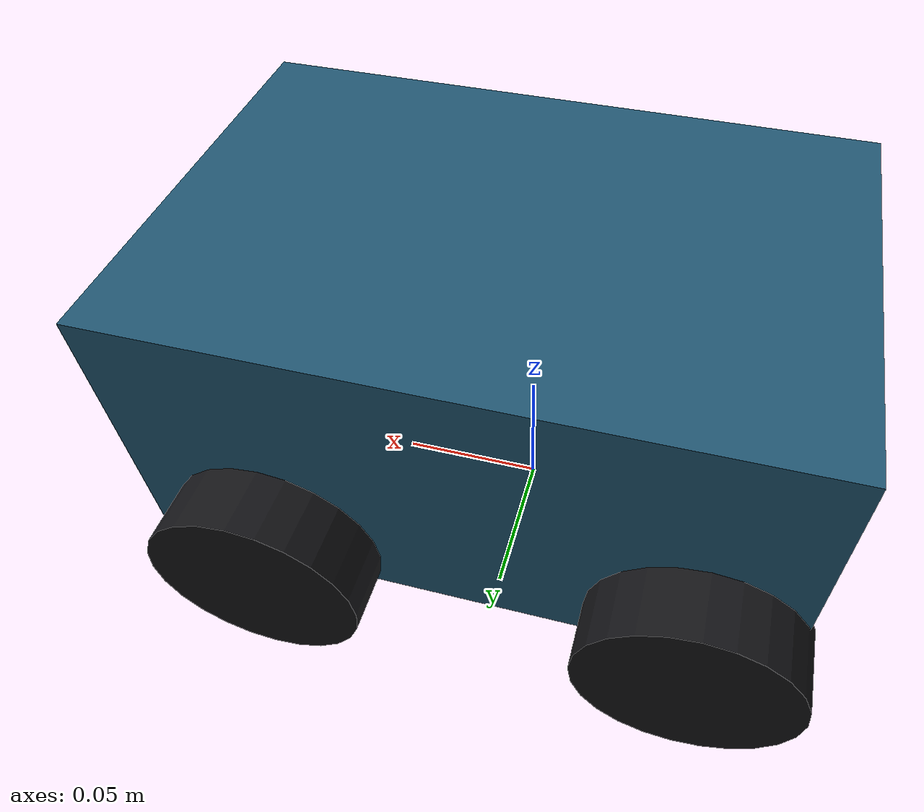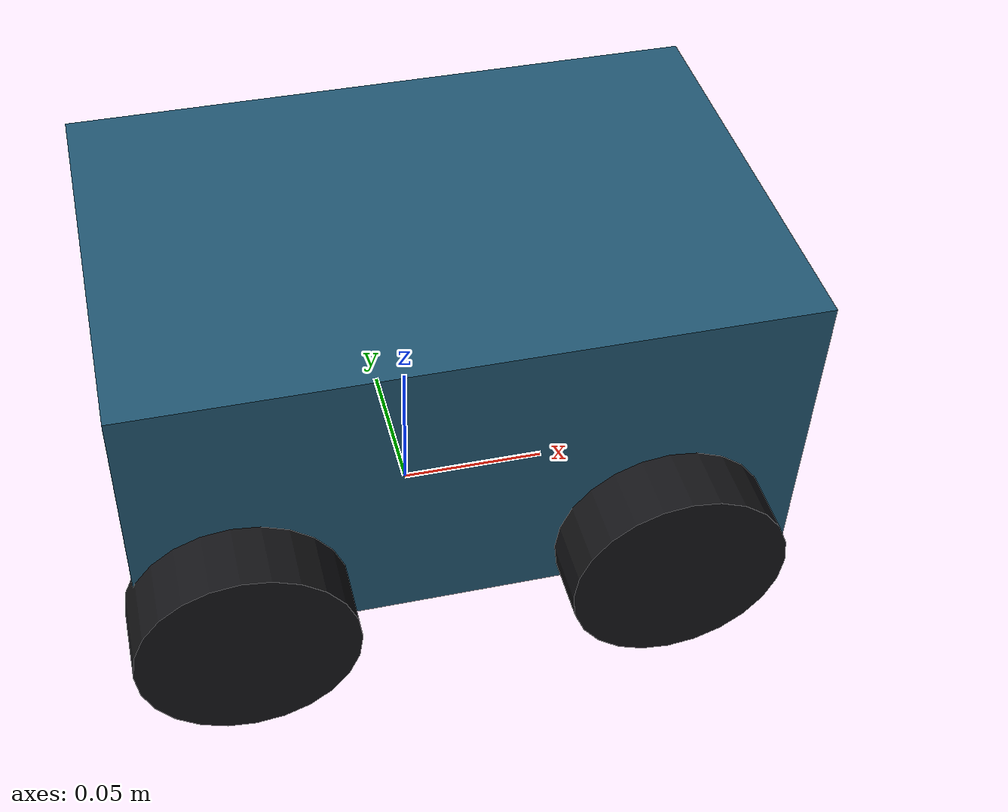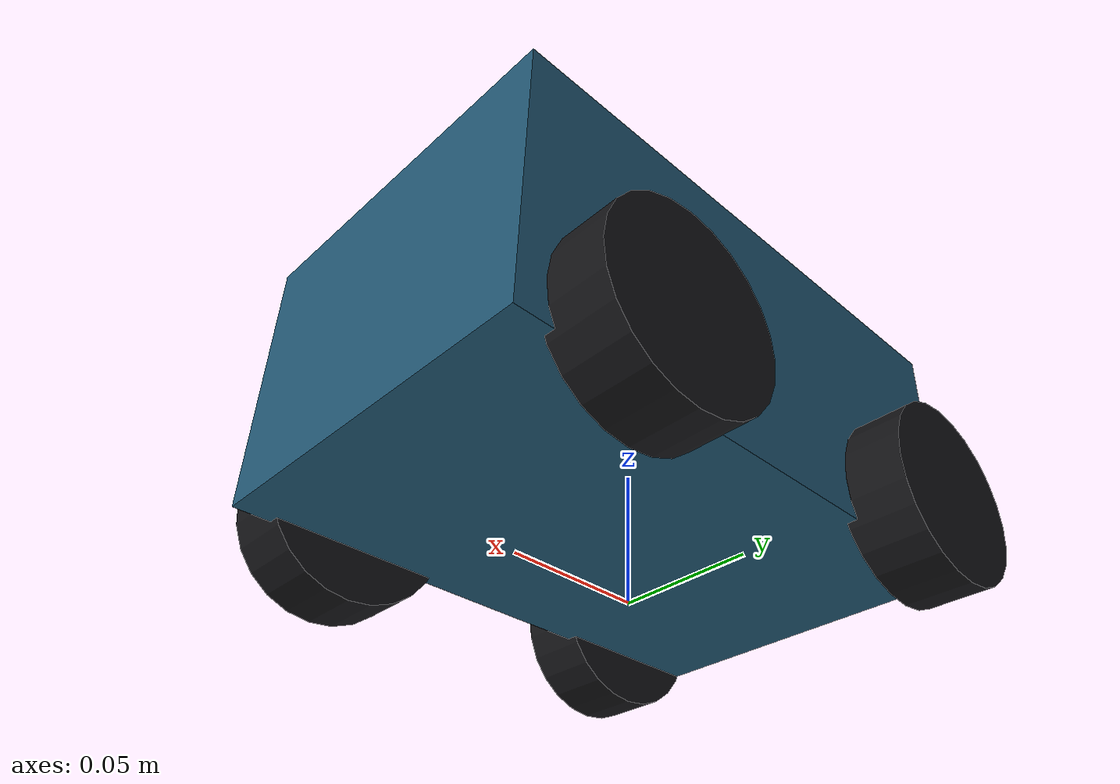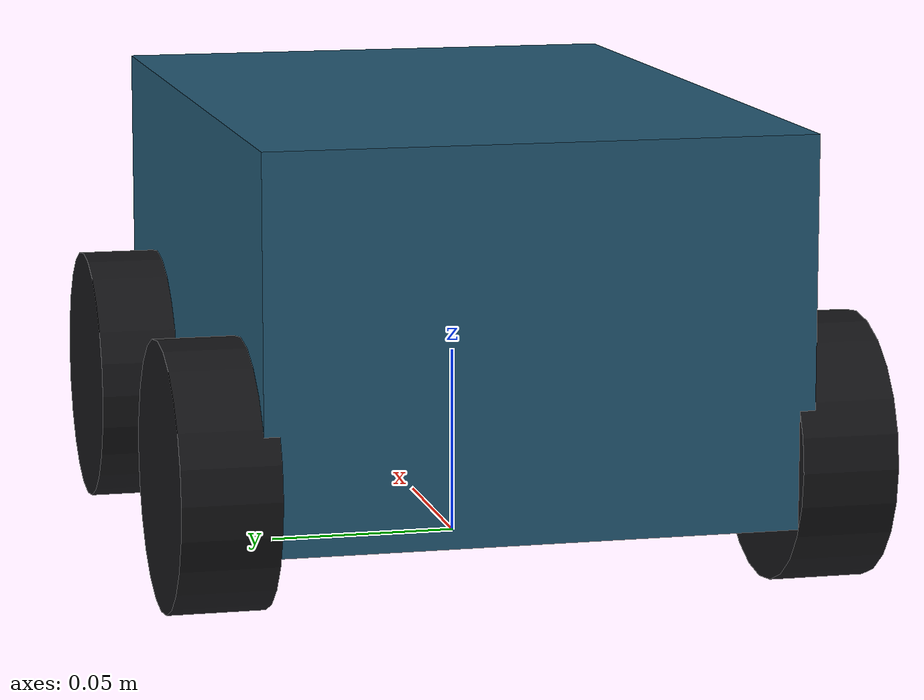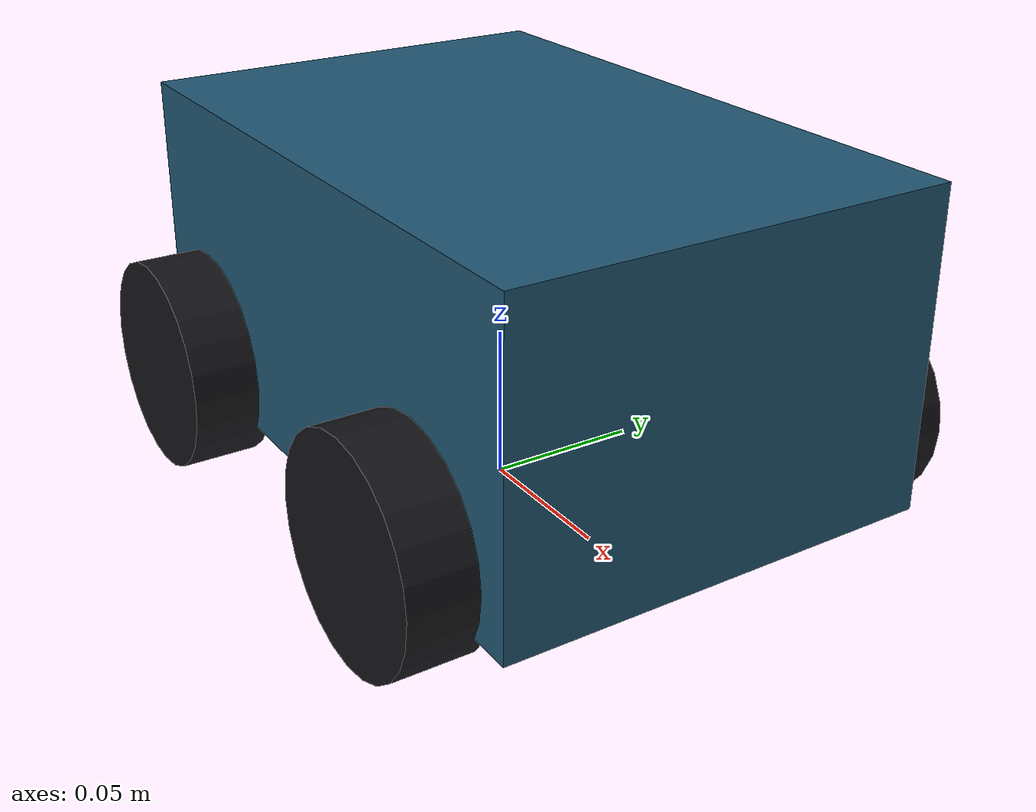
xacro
<?xml version="1.0"?>
<robot xmlns:xacro="http://www.ros.org/wiki/xacro" xmlns:gz="http://gazebosim.org/schema" name="ugv">
  <xacro:arg name="use_cad" default="false"/>
  <xacro:arg name="mesh_dir" default=""/>
  <!-- CAD tire envelope; replace with measured physical mecanum dimensions. -->
  <xacro:property name="radius" value="0.03446133"/>
  <xacro:property name="track" value="0.156907572"/>
  <xacro:property name="wheelbase" value="0.134780014"/>
  <xacro:property name="wheel_width" value="0.025"/>
  <xacro:property name="wheel_mass" value="0.045"/>
  <material name="body"><color rgba="0.13 0.34 0.45 1"/></material>
  <material name="tire"><color rgba="0.08 0.08 0.09 1"/></material>
  <material name="sensor"><color rgba="0.15 0.15 0.18 1"/></material>

  <link name="base_footprint"/>
  <joint name="base_joint" type="fixed">
    <parent link="base_footprint"/><child link="base_link"/>
    <origin xyz="0 0 ${radius}"/>
  </joint>
  <link name="base_link">
    <!-- Estimated mass and box inertia, not inferred from mixed-material CAD. -->
    <inertial>
      <origin xyz="0 0 0.035"/><mass value="0.8"/>
      <inertia ixx="0.00167" ixy="0" ixz="0" iyy="0.00321" iyz="0" izz="0.00417"/>
    </inertial>
    <visual>
      <xacro:if value="$(arg use_cad)">
        <geometry><mesh filename="file://$(arg mesh_dir)/chassis.stl"/></geometry>
      </xacro:if>
      <xacro:unless value="$(arg use_cad)">
        <origin xyz="0.007 0 0.035"/><geometry><box size="0.21 0.14 0.10"/></geometry>
      </xacro:unless>
      <material name="body"/>
    </visual>
    <collision>
      <origin xyz="0.007 0 0.035"/><geometry><box size="0.21 0.14 0.10"/></geometry>
    </collision>
  </link>

  <xacro:macro name="wheel" params="name x y friction_y">
    <link name="${name}_wheel">
      <inertial>
        <mass value="${wheel_mass}"/>
        <inertia ixx="${wheel_mass*(3*radius*radius+wheel_width*wheel_width)/12}"
                 iyy="${wheel_mass*radius*radius/2}"
                 izz="${wheel_mass*(3*radius*radius+wheel_width*wheel_width)/12}"
                 ixy="0" ixz="0" iyz="0"/>
      </inertial>
      <visual>
        <xacro:if value="$(arg use_cad)">
          <geometry><mesh filename="file://$(arg mesh_dir)/${name}_wheel.stl"/></geometry>
        </xacro:if>
        <xacro:unless value="$(arg use_cad)">
          <origin rpy="${pi/2} 0 0"/>
          <geometry><cylinder radius="${radius}" length="${wheel_width}"/></geometry>
        </xacro:unless>
        <material name="tire"/>
      </visual>
      <!-- Simplified mecanum contact; diagonal friction is defined below. -->
      <collision><geometry><sphere radius="${radius}"/></geometry></collision>
    </link>
    <joint name="${name}_wheel_joint" type="continuous">
      <parent link="base_link"/><child link="${name}_wheel"/>
      <origin xyz="${x} ${y} 0"/><axis xyz="0 1 0"/>
      <limit effort="0.4" velocity="30"/><dynamics damping="0.001"/>
    </joint>
    <gazebo reference="${name}_wheel">
      <collision>
        <surface>
          <friction>
            <ode>
              <mu>1.0</mu>
              <mu2>0.0</mu2>
              <fdir1 gz:expressed_in="base_footprint">1 ${friction_y} 0</fdir1>
            </ode>
          </friction>
        </surface>
      </collision>
    </gazebo>
  </xacro:macro>
  <xacro:wheel name="front_left"
               x="${wheelbase/2}" y="${track/2}"
               friction_y="-1"/>
  <xacro:wheel name="front_right"
               x="${wheelbase/2}" y="${-track/2}"
               friction_y="1"/>
  <xacro:wheel name="rear_left"
               x="${-wheelbase/2}" y="${track/2}"
               friction_y="1"/>
  <xacro:wheel name="rear_right"
               x="${-wheelbase/2}" y="${-track/2}"
               friction_y="-1"/>
  <gazebo>
    <plugin filename="gz-sim-mecanum-drive-system" name="gz::sim::systems::MecanumDrive">
      <front_left_joint>front_left_wheel_joint</front_left_joint>
      <front_right_joint>front_right_wheel_joint</front_right_joint>
      <back_left_joint>rear_left_wheel_joint</back_left_joint>
      <back_right_joint>rear_right_wheel_joint</back_right_joint>
      <wheel_separation>${track}</wheel_separation><wheelbase>${wheelbase}</wheelbase>
      <wheel_radius>${radius}</wheel_radius>
      <topic>/model/ugv/cmd_vel</topic><odom_topic>/model/ugv/odometry</odom_topic>
      <tf_topic>/model/ugv/tf</tf_topic><frame_id>odom</frame_id><child_frame_id>base_footprint</child_frame_id>
      <odom_publish_frequency>50</odom_publish_frequency>
      <max_linear_velocity>0.35</max_linear_velocity><min_linear_velocity>-0.35</min_linear_velocity>
      <max_angular_velocity>1.2</max_angular_velocity><min_angular_velocity>-1.2</min_angular_velocity>
      <max_linear_acceleration>0.5</max_linear_acceleration><min_linear_acceleration>-0.5</min_linear_acceleration>
      <max_angular_acceleration>1.5</max_angular_acceleration><min_angular_acceleration>-1.5</min_angular_acceleration>
    </plugin>
    <plugin filename="gz-sim-joint-state-publisher-system" name="gz::sim::systems::JointStatePublisher"/>
  </gazebo>

  <link name="camera_link" />

  <joint name="camera_joint" type="fixed">
    <parent link="base_link"/>
    <child link="camera_link"/>
    <origin xyz="0.115 0 0.08" rpy="0 0 0"/>
  </joint>

  <link name="camera_optical_frame"/>

  <joint name="camera_optical_joint" type="fixed">
    <parent link="camera_link"/>
    <child link="camera_optical_frame"/>
    <origin xyz="0 0 0" rpy="${-pi/2} 0 ${-pi/2}"/>
  </joint>

  <gazebo reference="camera_link">
    <sensor name="front_camera" type="camera">
      <always_on>true</always_on>
      <update_rate>15</update_rate>
      <topic>/camera/image_raw</topic>
      <gz_frame_id>camera_optical_frame</gz_frame_id>
      <camera>
        <horizontal_fov>${pi/3}</horizontal_fov>
        <image>
          <width>640</width>
          <height>480</height>
          <format>R8G8B8</format>
        </image>
        <clip>
          <near>0.02</near>
          <far>30</far>
        </clip>
        <camera_info_topic>/camera/camera_info</camera_info_topic>
      </camera>
    </sensor>
  </gazebo>
</robot>
